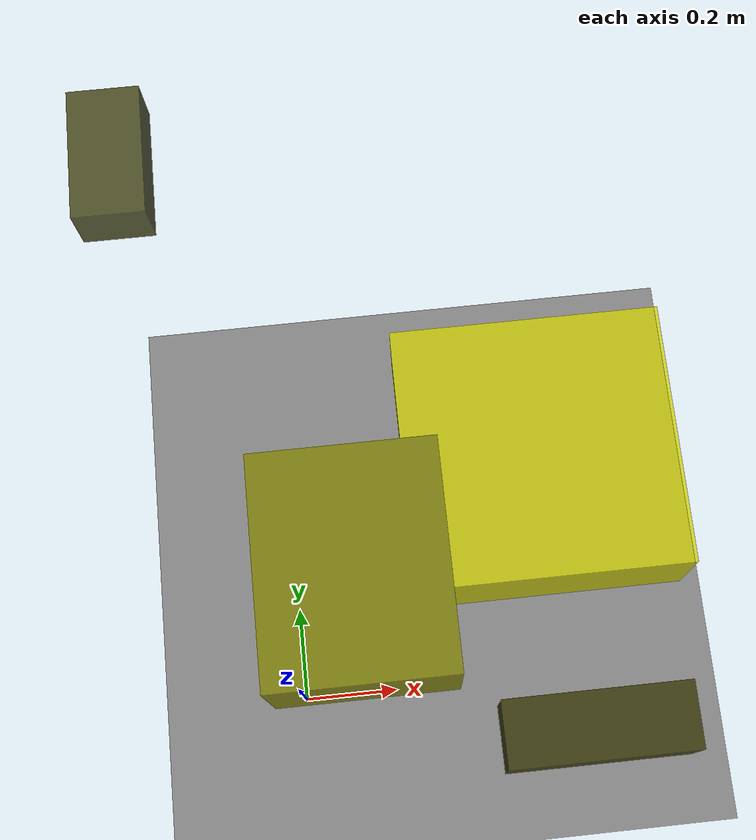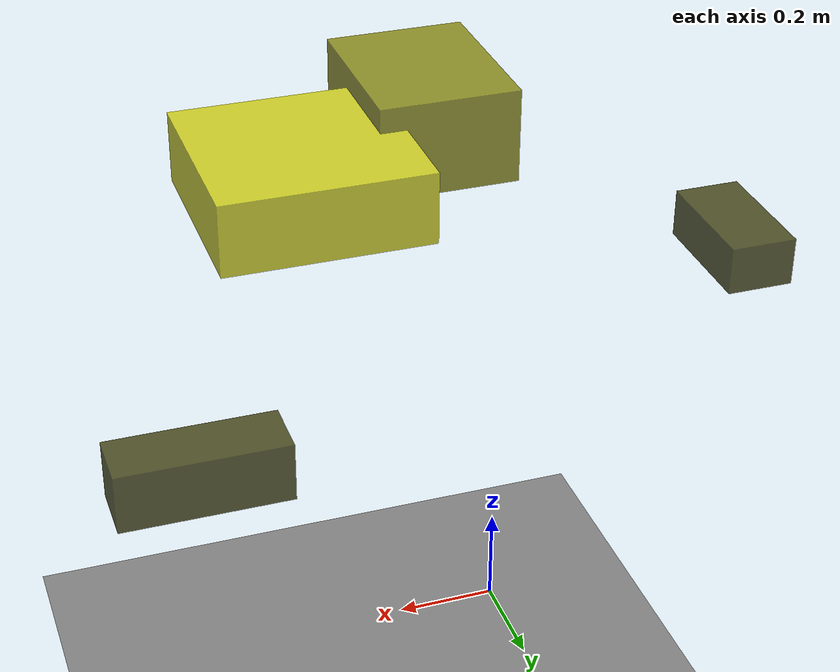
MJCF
<?xml version="1.0"?>
<mujoco model="obstacle_scene">
  <compiler angle="radian" coordinate="local"/>
  <option timestep="0.001" gravity="0 0 -9.81"/>

  <asset>
    <material name="obstacle_mat" rgba="0.8 0.8 0.0 0.8"/>
    <material name="ground_mat" rgba="0.5 0.5 0.5 1"/>
  </asset>

  <worldbody>
    <!-- Ground plane -->
    <geom name="ground" type="plane" size="3 3 0.1" material="ground_mat"/>

    <!-- Obstacles -->
    <body name="obstacle_0" pos="-0.122243 0.661812 1.198072">
      <geom name="obs_0" type="box" size="0.052203 0.099589 0.038283" rgba="0.2 0.2 0.0 0.8"/>
    </body>
    <body name="obstacle_1" pos="0.172821 0.028782 1.174601">
      <geom name="obs_1" type="box" size="0.127224 0.157137 0.086528" rgba="0.5 0.5 0.0 0.8"/>
    </body>
    <body name="obstacle_2" pos="0.438029 0.171014 1.151718">
      <geom name="obs_2" type="box" size="0.186090 0.181001 0.065532" rgba="0.8 0.8 0.0 0.8"/>
    </body>
    <body name="obstacle_3" pos="0.583668 -0.150621 0.347341">
      <geom name="obs_3" type="box" size="0.185646 0.066176 0.067679" rgba="0.2 0.2 0.0 0.8"/>
    </body>
  </worldbody>
</mujoco>
